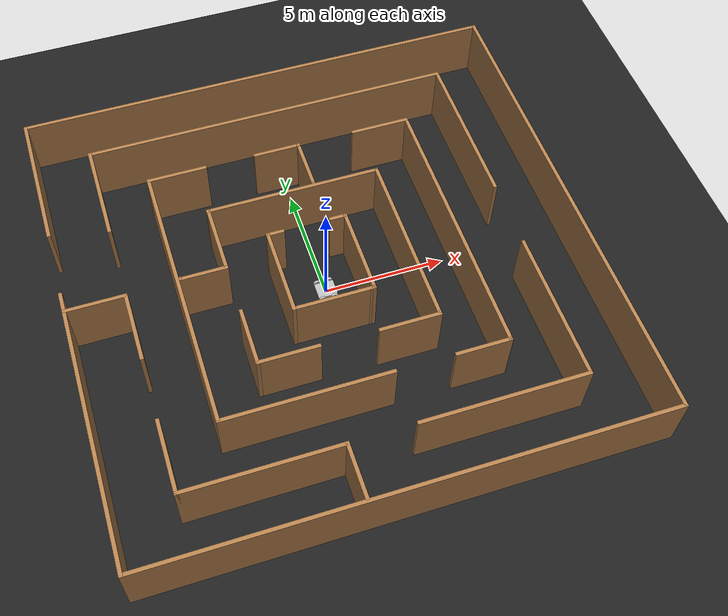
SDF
<sdf version="1.7">
 <world name="default">
  <light name="sun" type="directional">
   <pose>0 0 10 0 -0 0</pose>
   <diffuse>0.8 0.8 0.8 1</diffuse>
   <specular>0.2 0.2 0.2 1</specular>
   <attenuation>
    <range>1000</range>
    <constant>0.9</constant>
    <linear>0.01</linear>
    <quadratic>0.001</quadratic>
   </attenuation>
   <direction>-0.5 0.1 -0.9</direction>
   <spot><inner_angle>0</inner_angle><outer_angle>0</outer_angle><falloff>0</falloff></spot>
  </light>
  <model name="ground_plane">
   <static>1</static>
   <link name="link">
    <collision name="collision">
     <geometry><plane><normal>0 0 1</normal><size>10 10</size></plane></geometry>
     <surface>
      <contact><collide_bitmask>65535</collide_bitmask></contact>
      <friction><ode><mu>100</mu><mu2>50</mu2></ode></friction>
     </surface>
    </collision>
    <visual name="visual">
     <cast_shadows>0</cast_shadows>
     <geometry><plane><normal>0 0 1</normal><size>20 20</size></plane></geometry>
     <material>
      <script><uri>file://media/materials/scripts/gazebo.material</uri><name>Gazebo/Black</name></script>
     </material>
    </visual>
   </link>
  </model>
  <gravity>0 0 -9.8</gravity>
  <magnetic_field>6e-06 2.3e-05 -4.2e-05</magnetic_field>
  <atmosphere type="adiabatic"/>
  <physics type="ode">
   <max_step_size>0.001</max_step_size>
   <real_time_factor>1</real_time_factor>
   <real_time_update_rate>1000</real_time_update_rate>
  </physics>
  <scene><ambient>0.4 0.4 0.4 1</ambient><background>0.7 0.7 0.7 1</background><shadows>1</shadows></scene>
  <spherical_coordinates>
   <surface_model>EARTH_WGS84</surface_model>
   <latitude_deg>0</latitude_deg>
   <longitude_deg>0</longitude_deg>
   <elevation>0</elevation>
   <heading_deg>0</heading_deg>
  </spherical_coordinates>
  <model name="robot">
   <link name="base_footprint">
    <inertial>
     <pose>0 0 0.135 0 -0 0</pose>
     <mass>0.5</mass>
     <inertia><ixx>0.0415</ixx><ixy>0</ixy><ixz>0</ixz><iyy>0.0415</iyy><iyz>0</iyz><izz>0.0415</izz></inertia>
    </inertial>
    <collision name="base_footprint_fixed_joint_lump__base_link_collision">
     <pose>0 0 0.135 0 -0 0</pose>
     <geometry><box><size>0.8 0.7 0.1</size></box></geometry>
    </collision>
    <visual name="base_footprint_fixed_joint_lump__base_link_visual">
     <pose>0 0 0.135 0 -0 0</pose>
     <geometry><box><size>0.8 0.7 0.1</size></box></geometry>
    </visual>
   </link>
   <joint name="wheel_front_left_joint" type="revolute">
    <pose relative_to="base_footprint">-0.25 -0.4 0.135 0 -0 0</pose>
    <parent>base_footprint</parent>
    <child>wheel_front_left_link</child>
    <axis>
     <xyz>0 1 0</xyz>
     <limit><effort>1000</effort><velocity>100</velocity><lower>-1e+16</lower><upper>1e+16</upper></limit>
     <dynamics>
      <damping>1</damping>
      <friction>1</friction>
      <spring_reference>0</spring_reference>
      <spring_stiffness>0</spring_stiffness>
     </dynamics>
    </axis>
   </joint>
   <link name="wheel_front_left_link">
    <pose relative_to="wheel_front_left_joint">0 0 0 0 -0 0</pose>
    <inertial>
     <mass>0.25</mass>
     <inertia><ixx>0.01125</ixx><ixy>0</ixy><ixz>0</ixz><iyy>0.01125</iyy><iyz>0</iyz><izz>0.01125</izz></inertia>
    </inertial>
    <collision name="wheel_front_left_link_collision">
     <pose>0 0 0 1.57 -0 0</pose>
     <geometry><cylinder><length>0.1</length><radius>0.15</radius></cylinder></geometry>
    </collision>
    <visual name="wheel_front_left_link_fixed_joint_lump__wheel_front_left_visual_visual">
     <pose>0 0 0 1.57 -0 0</pose>
     <geometry><cylinder><length>0.1</length><radius>0.15</radius></cylinder></geometry>
    </visual>
   </link>
   <joint name="wheel_front_right_joint" type="revolute">
    <pose relative_to="base_footprint">-0.25 0.4 0.135 0 -0 0</pose>
    <parent>base_footprint</parent>
    <child>wheel_front_right_link</child>
    <axis>
     <xyz>0 1 0</xyz>
     <limit><effort>1000</effort><velocity>100</velocity><lower>-1e+16</lower><upper>1e+16</upper></limit>
     <dynamics>
      <damping>1</damping>
      <friction>1</friction>
      <spring_reference>0</spring_reference>
      <spring_stiffness>0</spring_stiffness>
     </dynamics>
    </axis>
   </joint>
   <link name="wheel_front_right_link">
    <pose relative_to="wheel_front_right_joint">0 0 0 0 -0 0</pose>
    <inertial>
     <mass>0.25</mass>
     <inertia><ixx>0.01125</ixx><ixy>0</ixy><ixz>0</ixz><iyy>0.01125</iyy><iyz>0</iyz><izz>0.01125</izz></inertia>
    </inertial>
    <collision name="wheel_front_right_link_collision">
     <pose>0 0 0 1.57 -0 0</pose>
     <geometry><cylinder><length>0.1</length><radius>0.15</radius></cylinder></geometry>
    </collision>
    <visual name="wheel_front_right_link_fixed_joint_lump__wheel_front_right_visual_visual">
     <pose>0 0 0 1.57 -0 0</pose>
     <geometry><cylinder><length>0.1</length><radius>0.15</radius></cylinder></geometry>
    </visual>
   </link>
   <joint name="wheel_rear_left_joint" type="revolute">
    <pose relative_to="base_footprint">0.25 -0.4 0.135 0 -0 0</pose>
    <parent>base_footprint</parent>
    <child>wheel_rear_left_link</child>
    <axis>
     <xyz>0 1 0</xyz>
     <limit><effort>1000</effort><velocity>100</velocity><lower>-1e+16</lower><upper>1e+16</upper></limit>
     <dynamics>
      <damping>1</damping>
      <friction>1</friction>
      <spring_reference>0</spring_reference>
      <spring_stiffness>0</spring_stiffness>
     </dynamics>
    </axis>
   </joint>
   <link name="wheel_rear_left_link">
    <pose relative_to="wheel_rear_left_joint">0 0 0 0 -0 0</pose>
    <inertial>
     <mass>0.25</mass>
     <inertia><ixx>0.01125</ixx><ixy>0</ixy><ixz>0</ixz><iyy>0.01125</iyy><iyz>0</iyz><izz>0.01125</izz></inertia>
    </inertial>
    <collision name="wheel_rear_left_link_collision">
     <pose>0 0 0 1.57 -0 0</pose>
     <geometry><cylinder><length>0.1</length><radius>0.15</radius></cylinder></geometry>
    </collision>
    <visual name="wheel_rear_left_link_fixed_joint_lump__wheel_rear_left_visual_visual">
     <pose>0 0 0 1.57 -0 0</pose>
     <geometry><cylinder><length>0.1</length><radius>0.15</radius></cylinder></geometry>
    </visual>
   </link>
   <joint name="wheel_rear_right_joint" type="revolute">
    <pose relative_to="base_footprint">0.25 0.4 0.135 0 -0 0</pose>
    <parent>base_footprint</parent>
    <child>wheel_rear_right_link</child>
    <axis>
     <xyz>0 1 0</xyz>
     <limit><effort>1000</effort><velocity>100</velocity><lower>-1e+16</lower><upper>1e+16</upper></limit>
     <dynamics>
      <damping>1</damping>
      <friction>1</friction>
      <spring_reference>0</spring_reference>
      <spring_stiffness>0</spring_stiffness>
     </dynamics>
    </axis>
   </joint>
   <link name="wheel_rear_right_link">
    <pose relative_to="wheel_rear_right_joint">0 0 0 0 -0 0</pose>
    <inertial>
     <mass>0.25</mass>
     <inertia><ixx>0.01125</ixx><ixy>0</ixy><ixz>0</ixz><iyy>0.01125</iyy><iyz>0</iyz><izz>0.01125</izz></inertia>
    </inertial>
    <collision name="wheel_rear_right_link_collision">
     <pose>0 0 0 1.57 -0 0</pose>
     <geometry><cylinder><length>0.1</length><radius>0.15</radius></cylinder></geometry>
    </collision>
    <visual name="wheel_rear_right_link_fixed_joint_lump__wheel_rear_right_visual_visual">
     <pose>0 0 0 1.57 -0 0</pose>
     <geometry><cylinder><length>0.1</length><radius>0.15</radius></cylinder></geometry>
    </visual>
   </link>
   <static>0</static>
   <plugin name="skid_steer_drive_controller" filename="libgazebo_ros_skid_steer_drive.so">
    <updateRate>100.0</updateRate>
    <robotNamespace>/</robotNamespace>
    <leftFrontJoint>wheel_front_left_joint</leftFrontJoint>
    <rightFrontJoint>wheel_front_right_joint</rightFrontJoint>
    <leftRearJoint>wheel_rear_left_joint</leftRearJoint>
    <rightRearJoint>wheel_rear_right_joint</rightRearJoint>
    <wheelSeparation>0.8</wheelSeparation>
    <wheelDiameter>0.3</wheelDiameter>
    <robotBaseFrame>base_footprint</robotBaseFrame>
    <torque>10</torque>
    <topicName>cmd_vel</topicName>
    <odometryTopic>odom</odometryTopic>
    <odometryFrame>odom</odometryFrame>
    <commandTopic>cmd_vel</commandTopic>
    <topic_name_twist>cmd_vel</topic_name_twist>
    <topic_name_odometry>odom</topic_name_odometry>
    <topic_name_joint>joint</topic_name_joint>
    <broadcastTF>1</broadcastTF>
    <covariance_x>0.0001</covariance_x>
    <covariance_y>0.0001</covariance_y>
    <covariance_yaw>0.01</covariance_yaw>
   </plugin>
  </model>
  <model name="Untitled">
   <pose>0.048314 0.050165 0 0 -0 0</pose>
   <link name="Wall_1">
    <collision name="Wall_1_Collision">
     <geometry><box><size>11.5 0.15 2.5</size></box></geometry>
     <pose>0 0 1.25 0 -0 0</pose>
    </collision>
    <visual name="Wall_1_Visual">
     <pose>0 0 1.25 0 -0 0</pose>
     <geometry><box><size>11.5 0.15 2.5</size></box></geometry>
     <material>
      <script><uri>file://media/materials/scripts/gazebo.material</uri><name>Gazebo/Wood</name></script>
      <ambient>1 1 1 1</ambient>
     </material>
     <meta><layer>0</layer></meta>
    </visual>
    <pose>-10.176 -4.38289 0 0 -0 -1.5708</pose>
   </link>
   <link name="Wall_10">
    <collision name="Wall_10_Collision">
     <geometry><box><size>20.4587 0.15 2.5</size></box></geometry>
     <pose>0 0 1.25 0 -0 0</pose>
    </collision>
    <visual name="Wall_10_Visual">
     <pose>0 0 1.25 0 -0 0</pose>
     <geometry><box><size>20.4587 0.15 2.5</size></box></geometry>
     <material>
      <script><uri>file://media/materials/scripts/gazebo.material</uri><name>Gazebo/Wood</name></script>
      <ambient>1 1 1 1</ambient>
     </material>
     <meta><layer>0</layer></meta>
    </visual>
    <pose>0.021616 10.0579 0 0 -0 0</pose>
   </link>
   <link name="Wall_105">
    <collision name="Wall_105_Collision">
     <geometry><box><size>0.15 0.15 2.5</size></box></geometry>
     <pose>0 0 1.25 0 -0 0</pose>
    </collision>
    <visual name="Wall_105_Visual">
     <pose>0 0 1.25 0 -0 0</pose>
     <geometry><box><size>0.15 0.15 2.5</size></box></geometry>
     <material>
      <script><uri>file://media/materials/scripts/gazebo.material</uri><name>Gazebo/Wood</name></script>
      <ambient>0 0 0 1</ambient>
     </material>
     <meta><layer>0</layer></meta>
    </visual>
    <pose>-5.70086 0.629688 0 0 -0 0</pose>
   </link>
   <link name="Wall_118">
    <collision name="Wall_118_Collision">
     <geometry><box><size>2.5 0.15 2.5</size></box></geometry>
     <pose>0 0 1.25 0 -0 0</pose>
    </collision>
    <visual name="Wall_118_Visual">
     <pose>0 0 1.25 0 -0 0</pose>
     <geometry><box><size>2.5 0.15 2.5</size></box></geometry>
     <material>
      <script><uri>file://media/materials/scripts/gazebo.material</uri><name>Gazebo/Wood</name></script>
      <ambient>1 1 1 1</ambient>
     </material>
     <meta><layer>0</layer></meta>
    </visual>
    <pose>4.15334 5.69295 0 0 -0 3.14159</pose>
   </link>
   <link name="Wall_12">
    <collision name="Wall_12_Collision">
     <geometry><box><size>6 0.15 2.5</size></box></geometry>
     <pose>0 0 1.25 0 -0 0</pose>
    </collision>
    <visual name="Wall_12_Visual">
     <pose>0 0 1.25 0 -0 0</pose>
     <geometry><box><size>6 0.15 2.5</size></box></geometry>
     <material>
      <script><uri>file://media/materials/scripts/gazebo.material</uri><name>Gazebo/Wood</name></script>
      <ambient>1 1 1 1</ambient>
     </material>
     <meta><layer>0</layer></meta>
    </visual>
    <pose>-10.1327 7.1329 0 0 -0 -1.5708</pose>
   </link>
   <link name="Wall_124">
    <collision name="Wall_124_Collision">
     <geometry><box><size>2.25 0.15 2.5</size></box></geometry>
     <pose>0 0 1.25 0 -0 0</pose>
    </collision>
    <visual name="Wall_124_Visual">
     <pose>0 0 1.25 0 -0 0</pose>
     <geometry><box><size>2.25 0.15 2.5</size></box></geometry>
     <material>
      <script><uri>file://media/materials/scripts/gazebo.material</uri><name>Gazebo/Wood</name></script>
      <ambient>1 1 1 1</ambient>
     </material>
     <meta><layer>0</layer></meta>
    </visual>
    <pose>4.26512 -5.65705 0 0 -0 3.14159</pose>
   </link>
   <link name="Wall_140">
    <collision name="Wall_140_Collision">
     <geometry><box><size>0.75 0.15 2.5</size></box></geometry>
     <pose>0 0 1.25 0 -0 0</pose>
    </collision>
    <visual name="Wall_140_Visual">
     <pose>0 0 1.25 0 -0 0</pose>
     <geometry><box><size>0.75 0.15 2.5</size></box></geometry>
     <material>
      <script><uri>file://media/materials/scripts/gazebo.material</uri><name>Gazebo/Wood</name></script>
      <ambient>1 1 1 1</ambient>
     </material>
     <meta><layer>0</layer></meta>
    </visual>
    <pose>-1.61512 1.62769 0 0 -0 0</pose>
   </link>
   <link name="Wall_162">
    <collision name="Wall_162_Collision">
     <geometry><box><size>2 0.15 2.5</size></box></geometry>
     <pose>0 0 1.25 0 -0 0</pose>
    </collision>
    <visual name="Wall_162_Visual">
     <pose>0 0 1.25 0 -0 0</pose>
     <geometry><box><size>2 0.15 2.5</size></box></geometry>
     <material>
      <script><uri>file://media/materials/scripts/gazebo.material</uri><name>Gazebo/Wood</name></script>
      <ambient>1 1 1 1</ambient>
     </material>
     <meta><layer>0</layer></meta>
    </visual>
    <pose>-0.358695 5.70626 0 0 -0 0</pose>
   </link>
   <link name="Wall_164">
    <collision name="Wall_164_Collision">
     <geometry><box><size>7.26 0.15 2.5</size></box></geometry>
     <pose>0 0 1.25 0 -0 0</pose>
    </collision>
    <visual name="Wall_164_Visual">
     <pose>0 0 1.25 0 -0 0</pose>
     <geometry><box><size>7.26 0.15 2.5</size></box></geometry>
     <material>
      <script><uri>file://media/materials/scripts/gazebo.material</uri><name>Gazebo/Wood</name></script>
      <ambient>1 1 1 1</ambient>
     </material>
     <meta><layer>0</layer></meta>
    </visual>
    <pose>-0.316396 3.46811 0 0 -0 3.14159</pose>
   </link>
   <link name="Wall_166">
    <collision name="Wall_166_Collision">
     <geometry><box><size>3 0.15 2.5</size></box></geometry>
     <pose>0 0 1.25 0 -0 0</pose>
    </collision>
    <visual name="Wall_166_Visual">
     <pose>0 0 1.25 0 -0 0</pose>
     <geometry><box><size>3 0.15 2.5</size></box></geometry>
     <material>
      <script><uri>file://media/materials/scripts/gazebo.material</uri><name>Gazebo/Wood</name></script>
      <ambient>1 1 1 1</ambient>
     </material>
     <meta><layer>0</layer></meta>
    </visual>
    <pose>-3.8614 2.04311 0 0 -0 -1.5708</pose>
   </link>
   <link name="Wall_172">
    <collision name="Wall_172_Collision">
     <geometry><box><size>0.15 0.15 2.5</size></box></geometry>
     <pose>0 0 1.25 0 -0 0</pose>
    </collision>
    <visual name="Wall_172_Visual">
     <pose>0 0 1.25 0 -0 0</pose>
     <geometry><box><size>0.15 0.15 2.5</size></box></geometry>
     <material>
      <script><uri>file://media/materials/scripts/gazebo.material</uri><name>Gazebo/Wood</name></script>
      <ambient>0 0 0 1</ambient>
     </material>
     <meta><layer>0</layer></meta>
    </visual>
    <pose>0.566305 3.60626 0 0 -0 0</pose>
   </link>
   <link name="Wall_175">
    <collision name="Wall_175_Collision">
     <geometry><box><size>2 0.15 2.5</size></box></geometry>
     <pose>0 0 1.25 0 -0 0</pose>
    </collision>
    <visual name="Wall_175_Visual">
     <pose>0 0 1.25 0 -0 0</pose>
     <geometry><box><size>2 0.15 2.5</size></box></geometry>
     <material>
      <script><uri>file://media/materials/scripts/gazebo.material</uri><name>Gazebo/Wood</name></script>
      <ambient>1 1 1 1</ambient>
     </material>
     <meta><layer>0</layer></meta>
    </visual>
    <pose>-4.7864 0.618109 0 0 -0 3.14159</pose>
   </link>
   <link name="Wall_177">
    <collision name="Wall_177_Collision">
     <geometry><box><size>2.5 0.15 2.5</size></box></geometry>
     <pose>0 0 1.25 0 -0 0</pose>
    </collision>
    <visual name="Wall_177_Visual">
     <pose>0 0 1.25 0 -0 0</pose>
     <geometry><box><size>2.5 0.15 2.5</size></box></geometry>
     <material>
      <script><uri>file://media/materials/scripts/gazebo.material</uri><name>Gazebo/Wood</name></script>
      <ambient>1 1 1 1</ambient>
     </material>
     <meta><layer>0</layer></meta>
    </visual>
    <pose>-2.66681 -3.80006 0 0 -0 0</pose>
   </link>
   <link name="Wall_179">
    <collision name="Wall_179_Collision">
     <geometry><box><size>2.5 0.15 2.5</size></box></geometry>
     <pose>0 0 1.25 0 -0 0</pose>
    </collision>
    <visual name="Wall_179_Visual">
     <pose>0 0 1.25 0 -0 0</pose>
     <geometry><box><size>2.5 0.15 2.5</size></box></geometry>
     <material>
      <script><uri>file://media/materials/scripts/gazebo.material</uri><name>Gazebo/Wood</name></script>
      <ambient>1 1 1 1</ambient>
     </material>
     <meta><layer>0</layer></meta>
    </visual>
    <pose>2.0636 -3.83492 0 0 -0 3.14159</pose>
   </link>
   <link name="Wall_181">
    <collision name="Wall_181_Collision">
     <geometry><box><size>7.25 0.15 2.5</size></box></geometry>
     <pose>0 0 1.25 0 -0 0</pose>
    </collision>
    <visual name="Wall_181_Visual">
     <pose>0 0 1.25 0 -0 0</pose>
     <geometry><box><size>7.25 0.15 2.5</size></box></geometry>
     <material>
      <script><uri>file://media/materials/scripts/gazebo.material</uri><name>Gazebo/Wood</name></script>
      <ambient>1 1 1 1</ambient>
     </material>
     <meta><layer>0</layer></meta>
    </visual>
    <pose>3.2386 -0.081891 0 0 -0 -1.5708</pose>
   </link>
   <link name="Wall_183">
    <collision name="Wall_183_Collision">
     <geometry><box><size>0.25 0.15 2.5</size></box></geometry>
     <pose>0 0 1.25 0 -0 0</pose>
    </collision>
    <visual name="Wall_183_Visual">
     <pose>0 0 1.25 0 -0 0</pose>
     <geometry><box><size>0.25 0.15 2.5</size></box></geometry>
     <material>
      <script><uri>file://media/materials/scripts/gazebo.material</uri><name>Gazebo/Wood</name></script>
      <ambient>1 1 1 1</ambient>
     </material>
     <meta><layer>0</layer></meta>
    </visual>
    <pose>3.2386 -3.68189 0 0 -0 -1.5708</pose>
   </link>
   <link name="Wall_185">
    <collision name="Wall_185_Collision">
     <geometry><box><size>3.75 0.15 2.5</size></box></geometry>
     <pose>0 0 1.25 0 -0 0</pose>
    </collision>
    <visual name="Wall_185_Visual">
     <pose>0 0 1.25 0 -0 0</pose>
     <geometry><box><size>3.75 0.15 2.5</size></box></geometry>
     <material>
      <script><uri>file://media/materials/scripts/gazebo.material</uri><name>Gazebo/Wood</name></script>
      <ambient>1 1 1 1</ambient>
     </material>
     <meta><layer>0</layer></meta>
    </visual>
    <pose>-1.91512 -0.172305 0 0 -0 -1.5708</pose>
   </link>
   <link name="Wall_187">
    <collision name="Wall_187_Collision">
     <geometry><box><size>3.25 0.15 2.5</size></box></geometry>
     <pose>0 0 1.25 0 -0 0</pose>
    </collision>
    <visual name="Wall_187_Visual">
     <pose>0 0 1.25 0 -0 0</pose>
     <geometry><box><size>3.25 0.15 2.5</size></box></geometry>
     <material>
      <script><uri>file://media/materials/scripts/gazebo.material</uri><name>Gazebo/Wood</name></script>
      <ambient>1 1 1 1</ambient>
     </material>
     <meta><layer>0</layer></meta>
    </visual>
    <pose>-0.365121 -1.9723 0 0 -0 0</pose>
   </link>
   <link name="Wall_188">
    <collision name="Wall_188_Collision">
     <geometry><box><size>0.25 0.15 2.5</size></box></geometry>
     <pose>0 0 1.25 0 -0 0</pose>
    </collision>
    <visual name="Wall_188_Visual">
     <pose>0 0 1.25 0 -0 0</pose>
     <geometry><box><size>0.25 0.15 2.5</size></box></geometry>
     <material>
      <script><uri>file://media/materials/scripts/gazebo.material</uri><name>Gazebo/Wood</name></script>
      <ambient>1 1 1 1</ambient>
     </material>
     <meta><layer>0</layer></meta>
    </visual>
    <pose>1.23488 -1.9723 0 0 -0 0</pose>
   </link>
   <link name="Wall_189">
    <collision name="Wall_189_Collision">
     <geometry><box><size>3.73685 0.15 2.5</size></box></geometry>
     <pose>0 0 1.25 0 -0 0</pose>
    </collision>
    <visual name="Wall_189_Visual">
     <pose>0 0 1.25 0 -0 0</pose>
     <geometry><box><size>3.73685 0.15 2.5</size></box></geometry>
     <material>
      <script><uri>file://media/materials/scripts/gazebo.material</uri><name>Gazebo/Wood</name></script>
      <ambient>1 1 1 1</ambient>
     </material>
     <meta><layer>0</layer></meta>
    </visual>
    <pose>1.28488 -0.17888 0 0 -0 1.5708</pose>
   </link>
   <link name="Wall_190">
    <collision name="Wall_190_Collision">
     <geometry><box><size>0.75 0.15 2.5</size></box></geometry>
     <pose>0 0 1.25 0 -0 0</pose>
    </collision>
    <visual name="Wall_190_Visual">
     <pose>0 0 1.25 0 -0 0</pose>
     <geometry><box><size>0.75 0.15 2.5</size></box></geometry>
     <material>
      <script><uri>file://media/materials/scripts/gazebo.material</uri><name>Gazebo/Wood</name></script>
      <ambient>1 1 1 1</ambient>
     </material>
     <meta><layer>0</layer></meta>
    </visual>
    <pose>0.984879 1.62112 0 0 -0 3.14159</pose>
   </link>
   <link name="Wall_192">
    <collision name="Wall_192_Collision">
     <geometry><box><size>2.25 0.15 2.5</size></box></geometry>
     <pose>0 0 1.25 0 -0 0</pose>
    </collision>
    <visual name="Wall_192_Visual">
     <pose>0 0 1.25 0 -0 0</pose>
     <geometry><box><size>2.25 0.15 2.5</size></box></geometry>
     <material>
      <script><uri>file://media/materials/scripts/gazebo.material</uri><name>Gazebo/Wood</name></script>
      <ambient>1 1 1 1</ambient>
     </material>
     <meta><layer>0</layer></meta>
    </visual>
    <pose>0.566305 4.65626 0 0 -0 -1.5708</pose>
   </link>
   <link name="Wall_194">
    <collision name="Wall_194_Collision">
     <geometry><box><size>11.5 0.15 2.5</size></box></geometry>
     <pose>0 0 1.25 0 -0 0</pose>
    </collision>
    <visual name="Wall_194_Visual">
     <pose>0 0 1.25 0 -0 0</pose>
     <geometry><box><size>11.5 0.15 2.5</size></box></geometry>
     <material>
      <script><uri>file://media/materials/scripts/gazebo.material</uri><name>Gazebo/Wood</name></script>
      <ambient>1 1 1 1</ambient>
     </material>
     <meta><layer>0</layer></meta>
    </visual>
    <pose>5.32834 0.017954 0 0 -0 -1.5708</pose>
   </link>
   <link name="Wall_23">
    <collision name="Wall_23_Collision">
     <geometry><box><size>2.5 0.15 2.5</size></box></geometry>
     <pose>0 0 1.25 0 -0 0</pose>
    </collision>
    <visual name="Wall_23_Visual">
     <pose>0 0 1.25 0 -0 0</pose>
     <geometry><box><size>2.5 0.15 2.5</size></box></geometry>
     <material>
      <script><uri>file://media/materials/scripts/gazebo.material</uri><name>Gazebo/Wood</name></script>
      <ambient>1 1 1 1</ambient>
     </material>
     <meta><layer>0</layer></meta>
    </visual>
    <pose>-8.99369 0.515863 0 0 -0 0</pose>
   </link>
   <link name="Wall_27">
    <collision name="Wall_27_Collision">
     <geometry><box><size>3 0.15 2.5</size></box></geometry>
     <pose>0 0 1.25 0 -0 0</pose>
    </collision>
    <visual name="Wall_27_Visual">
     <pose>0 0 1.25 0 -0 0</pose>
     <geometry><box><size>3 0.15 2.5</size></box></geometry>
     <material>
      <script><uri>file://media/materials/scripts/gazebo.material</uri><name>Gazebo/Wood</name></script>
      <ambient>1 1 1 1</ambient>
     </material>
     <meta><layer>0</layer></meta>
    </visual>
    <pose>-7.81869 -0.909137 0 0 -0 -1.5708</pose>
   </link>
   <link name="Wall_46">
    <collision name="Wall_46_Collision">
     <geometry><box><size>3 0.15 2.5</size></box></geometry>
     <pose>0 0 1.25 0 -0 0</pose>
    </collision>
    <visual name="Wall_46_Visual">
     <pose>0 0 1.25 0 -0 0</pose>
     <geometry><box><size>3 0.15 2.5</size></box></geometry>
     <material>
      <script><uri>file://media/materials/scripts/gazebo.material</uri><name>Gazebo/Wood</name></script>
      <ambient>1 1 1 1</ambient>
     </material>
     <meta><layer>0</layer></meta>
    </visual>
    <pose>-7.8262 -6.41707 0 0 -0 -1.5708</pose>
   </link>
   <link name="Wall_48">
    <collision name="Wall_48_Collision">
     <geometry><box><size>6.25 0.15 2.5</size></box></geometry>
     <pose>0 0 1.25 0 -0 0</pose>
    </collision>
    <visual name="Wall_48_Visual">
     <pose>0 0 1.25 0 -0 0</pose>
     <geometry><box><size>6.25 0.15 2.5</size></box></geometry>
     <material>
      <script><uri>file://media/materials/scripts/gazebo.material</uri><name>Gazebo/Wood</name></script>
      <ambient>1 1 1 1</ambient>
     </material>
     <meta><layer>0</layer></meta>
    </visual>
    <pose>-4.77621 -7.84207 0 0 -0 0</pose>
   </link>
   <link name="Wall_5">
    <collision name="Wall_5_Collision">
     <geometry><box><size>20.5 0.15 2.5</size></box></geometry>
     <pose>0 0 1.25 0 -0 0</pose>
    </collision>
    <visual name="Wall_5_Visual">
     <pose>0 0 1.25 0 -0 0</pose>
     <geometry><box><size>20.5 0.15 2.5</size></box></geometry>
     <material>
      <script><uri>file://media/materials/scripts/gazebo.material</uri><name>Gazebo/Wood</name></script>
      <ambient>1 1 1 1</ambient>
     </material>
     <meta><layer>0</layer></meta>
    </visual>
    <pose>-0.00097 -10.0579 0 0 -0 0</pose>
   </link>
   <link name="Wall_50">
    <collision name="Wall_50_Collision">
     <geometry><box><size>2.25 0.15 2.5</size></box></geometry>
     <pose>0 0 1.25 0 -0 0</pose>
    </collision>
    <visual name="Wall_50_Visual">
     <pose>0 0 1.25 0 -0 0</pose>
     <geometry><box><size>2.25 0.15 2.5</size></box></geometry>
     <material>
      <script><uri>file://media/materials/scripts/gazebo.material</uri><name>Gazebo/Wood</name></script>
      <ambient>1 1 1 1</ambient>
     </material>
     <meta><layer>0</layer></meta>
    </visual>
    <pose>-1.7262 -8.89207 0 0 -0 -1.5708</pose>
   </link>
   <link name="Wall_52">
    <collision name="Wall_52_Collision">
     <geometry><box><size>4.25 0.15 2.5</size></box></geometry>
     <pose>0 0 1.25 0 -0 0</pose>
    </collision>
    <visual name="Wall_52_Visual">
     <pose>0 0 1.25 0 -0 0</pose>
     <geometry><box><size>4.25 0.15 2.5</size></box></geometry>
     <material>
      <script><uri>file://media/materials/scripts/gazebo.material</uri><name>Gazebo/Wood</name></script>
      <ambient>1 1 1 1</ambient>
     </material>
     <meta><layer>0</layer></meta>
    </visual>
    <pose>-7.81591 5.7603 0 0 -0 1.5708</pose>
   </link>
   <link name="Wall_54">
    <collision name="Wall_54_Collision">
     <geometry><box><size>15.5 0.15 2.5</size></box></geometry>
     <pose>0 0 1.25 0 -0 0</pose>
    </collision>
    <visual name="Wall_54_Visual">
     <pose>0 0 1.25 0 -0 0</pose>
     <geometry><box><size>15.5 0.15 2.5</size></box></geometry>
     <material>
      <script><uri>file://media/materials/scripts/gazebo.material</uri><name>Gazebo/Wood</name></script>
      <ambient>1 1 1 1</ambient>
     </material>
     <meta><layer>0</layer></meta>
    </visual>
    <pose>-0.140912 7.8103 0 0 -0 0</pose>
   </link>
   <link name="Wall_56">
    <collision name="Wall_56_Collision">
     <geometry><box><size>6.75 0.15 2.5</size></box></geometry>
     <pose>0 0 1.25 0 -0 0</pose>
    </collision>
    <visual name="Wall_56_Visual">
     <pose>0 0 1.25 0 -0 0</pose>
     <geometry><box><size>6.75 0.15 2.5</size></box></geometry>
     <material>
      <script><uri>file://media/materials/scripts/gazebo.material</uri><name>Gazebo/Wood</name></script>
      <ambient>1 1 1 1</ambient>
     </material>
     <meta><layer>0</layer></meta>
    </visual>
    <pose>7.53409 4.5103 0 0 -0 -1.5708</pose>
   </link>
   <link name="Wall_59">
    <collision name="Wall_59_Collision">
     <geometry><box><size>6.75 0.15 2.5</size></box></geometry>
     <pose>0 0 1.25 0 -0 0</pose>
    </collision>
    <visual name="Wall_59_Visual">
     <pose>0 0 1.25 0 -0 0</pose>
     <geometry><box><size>6.75 0.15 2.5</size></box></geometry>
     <material>
      <script><uri>file://media/materials/scripts/gazebo.material</uri><name>Gazebo/Wood</name></script>
      <ambient>1 1 1 1</ambient>
     </material>
     <meta><layer>0</layer></meta>
    </visual>
    <pose>4.22389 -7.84208 0 0 -0 0</pose>
   </link>
   <link name="Wall_61">
    <collision name="Wall_61_Collision">
     <geometry><box><size>6.25 0.15 2.5</size></box></geometry>
     <pose>0 0 1.25 0 -0 0</pose>
    </collision>
    <visual name="Wall_61_Visual">
     <pose>0 0 1.25 0 -0 0</pose>
     <geometry><box><size>6.25 0.15 2.5</size></box></geometry>
     <material>
      <script><uri>file://media/materials/scripts/gazebo.material</uri><name>Gazebo/Wood</name></script>
      <ambient>1 1 1 1</ambient>
     </material>
     <meta><layer>0</layer></meta>
    </visual>
    <pose>7.5239 -4.79207 0 0 -0 1.5708</pose>
   </link>
   <link name="Wall_63">
    <collision name="Wall_63_Collision">
     <geometry><box><size>2.5 0.15 2.5</size></box></geometry>
     <pose>0 0 1.25 0 -0 0</pose>
    </collision>
    <visual name="Wall_63_Visual">
     <pose>0 0 1.25 0 -0 0</pose>
     <geometry><box><size>2.5 0.15 2.5</size></box></geometry>
     <material>
      <script><uri>file://media/materials/scripts/gazebo.material</uri><name>Gazebo/Wood</name></script>
      <ambient>1 1 1 1</ambient>
     </material>
     <meta><layer>0</layer></meta>
    </visual>
    <pose>-4.6242 5.70623 0 0 -0 0</pose>
   </link>
   <link name="Wall_67">
    <collision name="Wall_67_Collision">
     <geometry><box><size>11.5 0.15 2.5</size></box></geometry>
     <pose>0 0 1.25 0 -0 0</pose>
    </collision>
    <visual name="Wall_67_Visual">
     <pose>0 0 1.25 0 -0 0</pose>
     <geometry><box><size>11.5 0.15 2.5</size></box></geometry>
     <material>
      <script><uri>file://media/materials/scripts/gazebo.material</uri><name>Gazebo/Wood</name></script>
      <ambient>1 1 1 1</ambient>
     </material>
     <meta><layer>0</layer></meta>
    </visual>
    <pose>-5.7992 0.031233 0 0 -0 -1.5708</pose>
   </link>
   <link name="Wall_7">
    <collision name="Wall_7_Collision">
     <geometry><box><size>20.25 0.15 2.5</size></box></geometry>
     <pose>0 0 1.25 0 -0 0</pose>
    </collision>
    <visual name="Wall_7_Visual">
     <pose>0 0 1.25 0 -0 0</pose>
     <geometry><box><size>20.25 0.15 2.5</size></box></geometry>
     <material>
      <script><uri>file://media/materials/scripts/gazebo.material</uri><name>Gazebo/Wood</name></script>
      <ambient>1 1 1 1</ambient>
     </material>
     <meta><layer>0</layer></meta>
    </visual>
    <pose>10.174 -0.007894 0 0 -0 1.5708</pose>
   </link>
   <link name="Wall_70">
    <collision name="Wall_70_Collision">
     <geometry><box><size>6.75 0.15 2.5</size></box></geometry>
     <pose>0 0 1.25 0 -0 0</pose>
    </collision>
    <visual name="Wall_70_Visual">
     <pose>0 0 1.25 0 -0 0</pose>
     <geometry><box><size>6.75 0.15 2.5</size></box></geometry>
     <material>
      <script><uri>file://media/materials/scripts/gazebo.material</uri><name>Gazebo/Wood</name></script>
      <ambient>1 1 1 1</ambient>
     </material>
     <meta><layer>0</layer></meta>
    </visual>
    <pose>-2.4992 -5.64377 0 0 -0 0</pose>
   </link>
   <link name="Wall_82">
    <collision name="Wall_82_Collision">
     <geometry><box><size>2.46555 0.15 2.5</size></box></geometry>
     <pose>0 0 1.25 0 -0 0</pose>
    </collision>
    <visual name="Wall_82_Visual">
     <pose>0 0 1.25 0 -0 0</pose>
     <geometry><box><size>2.46555 0.15 2.5</size></box></geometry>
     <material>
      <script><uri>file://media/materials/scripts/gazebo.material</uri><name>Gazebo/Wood</name></script>
      <ambient>1 1 1 1</ambient>
     </material>
     <meta><layer>0</layer></meta>
    </visual>
    <pose>-3.84181 -2.64229 0 0 -0 -1.5708</pose>
   </link>
   <static>1</static>
  </model>
 </world>
</sdf>
